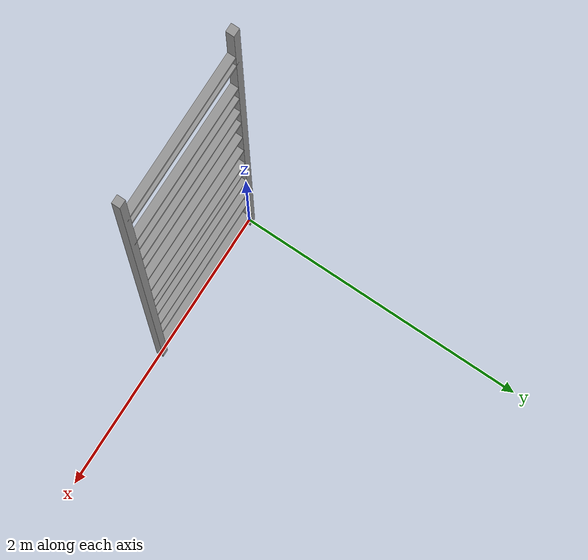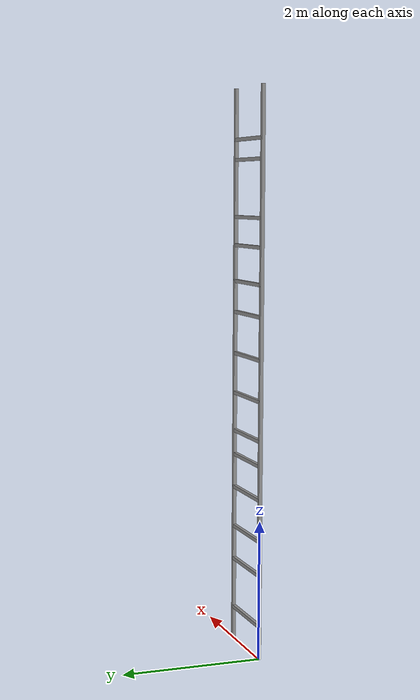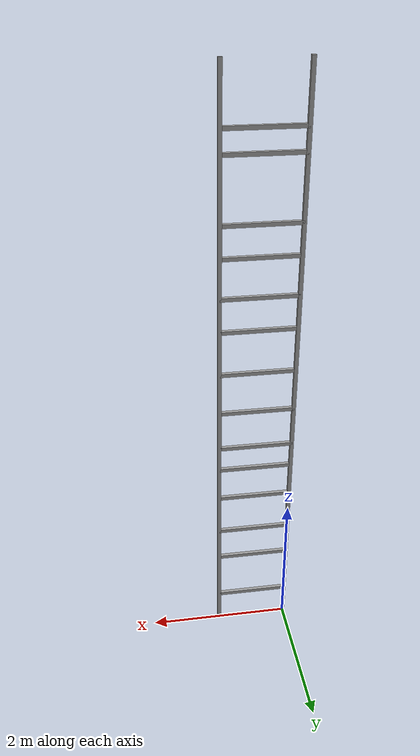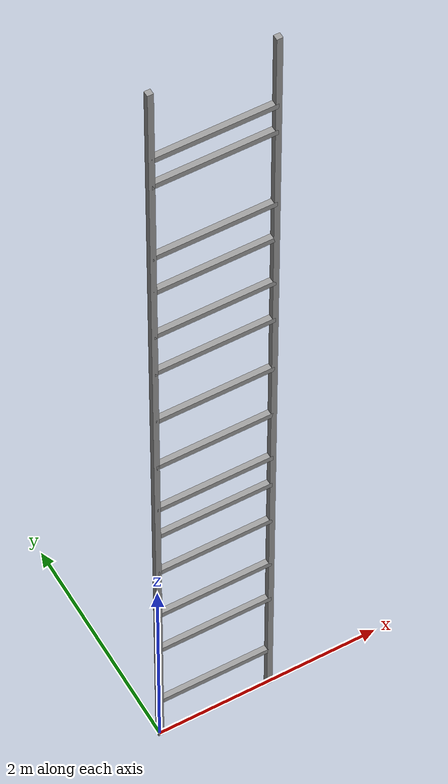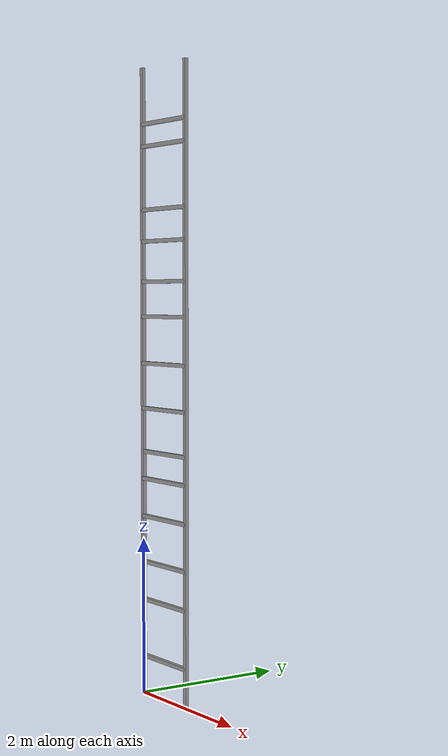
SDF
<?xml version="1.0" ?>
<sdf version="1.5">
  <model name="ladder">
    <static>true</static>
    <link name="link">

<collision name="ladderV1collision">
<pose>0.000000 0.000000 4.000000 0.000000 0.000000 0.000000</pose>
<geometry> <box> <size>0.050000 0.050000 8.000000</size> </box> </geometry>
</collision>
<visual name="ladderV1visual">
<pose>0.000000 0.000000 4.000000 0.000000 0.000000 0.000000</pose>
<geometry> <box> <size>0.050000 0.050000 8.000000</size> </box> </geometry>
<material> <script> <uri>file://media/materials/scripts/gazebo.material</uri>
<name>Gazebo/Grey</name> </script> </material>
</visual>

<collision name="ladderV2collision">
<pose>1.000000 0.000000 4.000000 0.000000 0.000000 0.000000</pose>
<geometry> <box> <size>0.050000 0.050000 8.000000</size> </box> </geometry>
</collision>
<visual name="ladderV2visual">
<pose>1.000000 0.000000 4.000000 0.000000 0.000000 0.000000</pose>
<geometry> <box> <size>0.050000 0.050000 8.000000</size> </box> </geometry>
<material> <script> <uri>file://media/materials/scripts/gazebo.material</uri>
<name>Gazebo/Grey</name> </script> </material>
</visual>

<collision name="ladderH1collision">
<pose>0.500000 0.000000 0.486533 0.000000 0.000000 0.000000</pose>
<geometry> <box> <size>1.000000 0.050000 0.050000</size> </box> </geometry>
</collision>
<visual name="ladderH1visual">
<pose>0.500000 0.000000 0.486533 0.000000 0.000000 0.000000</pose>
<geometry> <box> <size>1.000000 0.050000 0.050000</size> </box> </geometry>
<material> <script> <uri>file://media/materials/scripts/gazebo.material</uri>
<name>Gazebo/Grey</name> </script> </material>
</visual>

<collision name="ladderH2collision">
<pose>0.500000 0.000000 1.221067 0.000000 0.000000 0.000000</pose>
<geometry> <box> <size>1.000000 0.050000 0.050000</size> </box> </geometry>
</collision>
<visual name="ladderH2visual">
<pose>0.500000 0.000000 1.221067 0.000000 0.000000 0.000000</pose>
<geometry> <box> <size>1.000000 0.050000 0.050000</size> </box> </geometry>
<material> <script> <uri>file://media/materials/scripts/gazebo.material</uri>
<name>Gazebo/Grey</name> </script> </material>
</visual>

<collision name="ladderH3collision">
<pose>0.500000 0.000000 1.710800 0.000000 0.000000 0.000000</pose>
<geometry> <box> <size>1.000000 0.050000 0.050000</size> </box> </geometry>
</collision>
<visual name="ladderH3visual">
<pose>0.500000 0.000000 1.710800 0.000000 0.000000 0.000000</pose>
<geometry> <box> <size>1.000000 0.050000 0.050000</size> </box> </geometry>
<material> <script> <uri>file://media/materials/scripts/gazebo.material</uri>
<name>Gazebo/Grey</name> </script> </material>
</visual>

<collision name="ladderH4collision">
<pose>0.500000 0.000000 2.299333 0.000000 0.000000 0.000000</pose>
<geometry> <box> <size>1.000000 0.050000 0.050000</size> </box> </geometry>
</collision>
<visual name="ladderH4visual">
<pose>0.500000 0.000000 2.299333 0.000000 0.000000 0.000000</pose>
<geometry> <box> <size>1.000000 0.050000 0.050000</size> </box> </geometry>
<material> <script> <uri>file://media/materials/scripts/gazebo.material</uri>
<name>Gazebo/Grey</name> </script> </material>
</visual>

<collision name="ladderH5collision">
<pose>0.500000 0.000000 2.783867 0.000000 0.000000 0.000000</pose>
<geometry> <box> <size>1.000000 0.050000 0.050000</size> </box> </geometry>
</collision>
<visual name="ladderH5visual">
<pose>0.500000 0.000000 2.783867 0.000000 0.000000 0.000000</pose>
<geometry> <box> <size>1.000000 0.050000 0.050000</size> </box> </geometry>
<material> <script> <uri>file://media/materials/scripts/gazebo.material</uri>
<name>Gazebo/Grey</name> </script> </material>
</visual>

<collision name="ladderH6collision">
<pose>0.500000 0.000000 3.134000 0.000000 0.000000 0.000000</pose>
<geometry> <box> <size>1.000000 0.050000 0.050000</size> </box> </geometry>
</collision>
<visual name="ladderH6visual">
<pose>0.500000 0.000000 3.134000 0.000000 0.000000 0.000000</pose>
<geometry> <box> <size>1.000000 0.050000 0.050000</size> </box> </geometry>
<material> <script> <uri>file://media/materials/scripts/gazebo.material</uri>
<name>Gazebo/Grey</name> </script> </material>
</visual>

<collision name="ladderH7collision">
<pose>0.500000 0.000000 3.687733 0.000000 0.000000 0.000000</pose>
<geometry> <box> <size>1.000000 0.050000 0.050000</size> </box> </geometry>
</collision>
<visual name="ladderH7visual">
<pose>0.500000 0.000000 3.687733 0.000000 0.000000 0.000000</pose>
<geometry> <box> <size>1.000000 0.050000 0.050000</size> </box> </geometry>
<material> <script> <uri>file://media/materials/scripts/gazebo.material</uri>
<name>Gazebo/Grey</name> </script> </material>
</visual>

<collision name="ladderH8collision">
<pose>0.500000 0.000000 4.263467 0.000000 0.000000 0.000000</pose>
<geometry> <box> <size>1.000000 0.050000 0.050000</size> </box> </geometry>
</collision>
<visual name="ladderH8visual">
<pose>0.500000 0.000000 4.263467 0.000000 0.000000 0.000000</pose>
<geometry> <box> <size>1.000000 0.050000 0.050000</size> </box> </geometry>
<material> <script> <uri>file://media/materials/scripts/gazebo.material</uri>
<name>Gazebo/Grey</name> </script> </material>
</visual>

<collision name="ladderH9collision">
<pose>0.500000 0.000000 4.859600 0.000000 0.000000 0.000000</pose>
<geometry> <box> <size>1.000000 0.050000 0.050000</size> </box> </geometry>
</collision>
<visual name="ladderH9visual">
<pose>0.500000 0.000000 4.859600 0.000000 0.000000 0.000000</pose>
<geometry> <box> <size>1.000000 0.050000 0.050000</size> </box> </geometry>
<material> <script> <uri>file://media/materials/scripts/gazebo.material</uri>
<name>Gazebo/Grey</name> </script> </material>
</visual>

<collision name="ladderH10collision">
<pose>0.500000 0.000000 5.301733 0.000000 0.000000 0.000000</pose>
<geometry> <box> <size>1.000000 0.050000 0.050000</size> </box> </geometry>
</collision>
<visual name="ladderH10visual">
<pose>0.500000 0.000000 5.301733 0.000000 0.000000 0.000000</pose>
<geometry> <box> <size>1.000000 0.050000 0.050000</size> </box> </geometry>
<material> <script> <uri>file://media/materials/scripts/gazebo.material</uri>
<name>Gazebo/Grey</name> </script> </material>
</visual>

<collision name="ladderH11collision">
<pose>0.500000 0.000000 5.811467 0.000000 0.000000 0.000000</pose>
<geometry> <box> <size>1.000000 0.050000 0.050000</size> </box> </geometry>
</collision>
<visual name="ladderH11visual">
<pose>0.500000 0.000000 5.811467 0.000000 0.000000 0.000000</pose>
<geometry> <box> <size>1.000000 0.050000 0.050000</size> </box> </geometry>
<material> <script> <uri>file://media/materials/scripts/gazebo.material</uri>
<name>Gazebo/Grey</name> </script> </material>
</visual>

<collision name="ladderH12collision">
<pose>0.500000 0.000000 6.210800 0.000000 0.000000 0.000000</pose>
<geometry> <box> <size>1.000000 0.050000 0.050000</size> </box> </geometry>
</collision>
<visual name="ladderH12visual">
<pose>0.500000 0.000000 6.210800 0.000000 0.000000 0.000000</pose>
<geometry> <box> <size>1.000000 0.050000 0.050000</size> </box> </geometry>
<material> <script> <uri>file://media/materials/scripts/gazebo.material</uri>
<name>Gazebo/Grey</name> </script> </material>
</visual>

<collision name="ladderH13collision">
<pose>0.500000 0.000000 7.009333 0.000000 0.000000 0.000000</pose>
<geometry> <box> <size>1.000000 0.050000 0.050000</size> </box> </geometry>
</collision>
<visual name="ladderH13visual">
<pose>0.500000 0.000000 7.009333 0.000000 0.000000 0.000000</pose>
<geometry> <box> <size>1.000000 0.050000 0.050000</size> </box> </geometry>
<material> <script> <uri>file://media/materials/scripts/gazebo.material</uri>
<name>Gazebo/Grey</name> </script> </material>
</visual>

<collision name="ladderH14collision">
<pose>0.500000 0.000000 7.290267 0.000000 0.000000 0.000000</pose>
<geometry> <box> <size>1.000000 0.050000 0.050000</size> </box> </geometry>
</collision>
<visual name="ladderH14visual">
<pose>0.500000 0.000000 7.290267 0.000000 0.000000 0.000000</pose>
<geometry> <box> <size>1.000000 0.050000 0.050000</size> </box> </geometry>
<material> <script> <uri>file://media/materials/scripts/gazebo.material</uri>
<name>Gazebo/Grey</name> </script> </material>
</visual>

    </link>
  </model>
</sdf>
